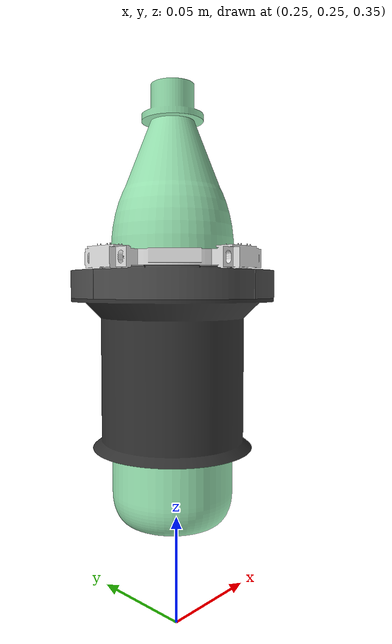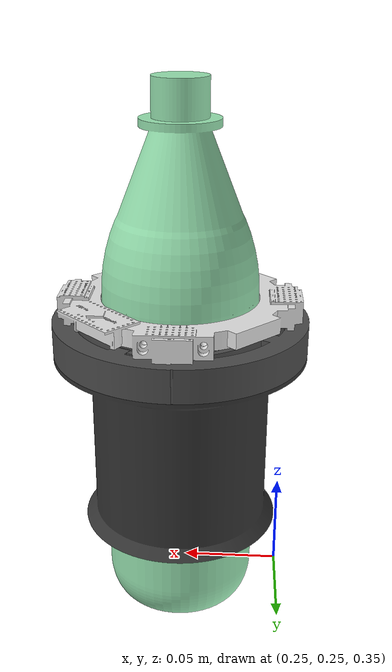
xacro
<?xml version="1.0" ?>
<robot
       xmlns:xacro="http://www.ros.org/wiki/xacro"
       name="bottle_ft_demo">

  <!-- basic Gazebo demo of the bottle_ft sensor.  -->

  <xacro:include filename="$(find tams_printed_ft)/urdf/ft_payload.xacro" />
  <xacro:include filename="$(find tams_printed_ft)/urdf/ft_sensor.xacro" />

  <xacro:include filename="$(find tams_printed_ft)/urdf/bottle_ft.xacro" />

  <link name="world" />

  <xacro:ft_control_plugin name="bottle_ft" />

  <xacro:ft_sensor_plugin
     name="bottle_ft"
     joint="sensor_joint"
     rate="200"
     topic="wrench" >
  </xacro:ft_sensor_plugin>

  <xacro:bottle_ft name="bottle_ft" />

  <joint name="world_bottle_ft_joint" type="fixed">
    <parent link="world" />
    <child link="bottle_ft" />
    <origin xyz="0.3 0.3 0.5" rpy="0 0 0" />
  </joint>

  <!-- single payload for testing -->

  <xacro:bottle_ft_bottle_500ml  name="bottle_500ml" />

  <joint name="world_bottle_ft_bottle_fixed_joint" type="fixed">
    <parent link="bottle_ft_upper_ring" />
    <child link="bottle_500ml" />
    <origin xyz="0 0 0" rpy="0 0 0" />
  </joint>

</robot>

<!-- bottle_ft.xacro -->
<robot
       xmlns:xacro="http://www.ros.org/wiki/xacro"
       name="bottle_ft">

<xacro:macro name="bottle_ft" params="name" >

  <link name="${name}">
    <!-- base ring height: outer 15mm, inner 18mm, fins~22mm, diameter 114mm -->
    <inertial>
      <origin xyz="0 0 ${0.016/2}" /> <!-- CoG is lower than total height -->
      <mass value="0.2" />
      <inertia  ixx="0.0001" ixy="0" ixz="0" iyy="0.0001" iyz="0" izz="0.00005" />
    </inertial>
    <visual>
      <origin xyz="0 0 0" />
      <material name="bottle_ft_gray" >
        <color rgba="0.3 0.3 0.3 1.0" />
      </material>
      <geometry>
        <mesh filename="package://tams_printed_ft/meshes/bottle-six-axis-ft-v2-base-ring-h15.dae" scale="0.001 0.001 0.001" />
      </geometry>
    </visual>
    <collision>
      <origin xyz="0 0 ${0.015/2}" /> <!-- outer height, 3mm gap to upper ring -->
      <geometry>
        <cylinder radius="${0.114/2}" length="0.015" />
      </geometry>
    </collision>
  </link>

  <gazebo reference="${name}">
    <material>Gazebo/Black</material>
    <turnGravityOff>false</turnGravityOff>
    <selfCollide>false</selfCollide>
    <!-- kp: stiffness kd: damping mu1, mu2: friction -->
    <mu1>100.0</mu1>
    <mu2>100.0</mu2>
    <kp>1000000.0</kp>
    <kd>1.0</kd>
  </gazebo>

  <link name="bottle_ft_upper_ring">
    <!-- effective height 8mm, outer diameter 108mm -->
    <inertial>
      <origin xyz="0 0 ${0.008/2}" />
      <mass value="0.10" />
      <inertia  ixx="0.00002" ixy="0" ixz="0" iyy="0.00002" iyz="0" izz="0.00001" />
    </inertial>
    <visual>
      <!-- note: this mesh is translated by (0,0,0.018) from the origin -->
      <origin xyz="0 0 -0.018" />
      <material name="silver" >
        <color rgba="0.9 0.9 0.9 1.0" />
      </material>
      <geometry>
        <mesh filename="package://tams_printed_ft/meshes/bottle-six-axis-ft-v2-upper-ring-sensor-modules-arduino.dae" scale="0.001 0.001 0.001" />
      </geometry>
    </visual>
    <collision>
      <origin xyz="0 0 ${0.008/2}" />
      <geometry>
        <cylinder radius="${0.108/2}" length="0.008" />
      </geometry>
    </collision>
  </link>

  <gazebo reference="bottle_ft_upper_ring">
      <material>Gazebo/White</material>
      <turnGravityOff>false</turnGravityOff>
      <selfCollide>false</selfCollide>
      <!-- kp: stiffness kd: damping mu1, mu2: friction -->
      <mu1>100.0</mu1>
      <mu2>100.0</mu2>
      <kp>1000000.0</kp>
      <kd>1.0</kd>
  </gazebo>

  <!-- type=floating, no axis required -->
  <joint name="${name}_sensor_joint" type="revolute">
    <parent link="${name}" />
    <child link="${name}_upper_ring" />
    <origin xyz="0 0 ${0.018}" rpy="0 0 0" />
    <axis xyz="1 0 0" rpy="0 0 0" />
    <dynamics damping="1.01" friction="0.05" />
    <limit lower="-0.02" upper="0.02" effort="100" velocity="1" />
    <safety_controller soft_lower_limit="-0.001" soft_upper_limit="0.001" k_position="1" k_velocity="1" />
  </joint>

  <transmission name="${name}_sensor_joint_transmission">
    <type>transmission_interface/SimpleTransmission</type>
    <joint name="${name}_sensor_joint">
      <hardwareInterface>hardware_interface/EffortJointInterface</hardwareInterface>
    </joint>
    <actuator name="${name}_sensor_joint_motor">
      <hardwareInterface>hardware_interface/EffortJointInterface</hardwareInterface>
      <mechanicalReduction>1</mechanicalReduction>
    </actuator>
  </transmission>

  <link name="bottle_ft_grasp_handle">
    <!-- main diameter of grasp handle: 70 + 2*2.5 = 75mm -->
    <inertial>
      <origin xyz="0 0 -0.035" />
      <mass value="0.15" />
      <inertia  ixx="0.00002" ixy="0" ixz="0" iyy="0.00002" iyz="0" izz="0.00001" />
    </inertial>
    <visual>
      <origin xyz="0 0 0" />
      <material name="bottle_ft_gray" >
        <color rgba="0.2 0.2 0.2 1.0" />
      </material>
      <geometry>
       <mesh filename="package://tams_printed_ft/meshes/bottle-six-axis-ft-v2-grasp-handle-70mm.dae" scale="0.001 0.001 0.001" />
      </geometry>
    </visual>
    <collision>
      <origin xyz="0 0 0" />
      <geometry>
        <mesh filename="package://tams_printed_ft/meshes/bottle-six-axis-ft-v2-grasp-handle-70mm.dae" scale="0.001 0.001 0.001" />
      </geometry>
    </collision>
  </link>

  <gazebo reference="bottle_ft_grasp_handle">
    <material>Gazebo/Black</material>
    <turnGravityOff>false</turnGravityOff>
    <selfCollide>false</selfCollide>
    <!-- kp: stiffness kd: damping mu1, mu2: friction -->
    <mu1>100.0</mu1>
    <mu2>100.0</mu2>
    <kp>1000000.0</kp>
    <kd>1.0</kd>
  </gazebo>

  <joint name="bottle_ft_grasp_handle_joint" type="fixed">
    <parent link="bottle_ft" />
    <child link="bottle_ft_grasp_handle" />
    <origin xyz="0 0 0" rpy="0 0 0" />
  </joint>

</xacro:macro>

<xacro:macro name="bottle_ft_bottle_500ml" params="name" >

  <link name="${name}">
    <inertial>
      <origin xyz="0 0 0" />
      <mass value="0.520" />
      <inertia  ixx="0.00002" ixy="0" ixz="0" iyy="0.00002" iyz="0" izz="0.00001" />
    </inertial>
    <visual>
      <origin xyz="0 0 0.1" />
      <material name="bottle_plastic" >
        <color rgba="0.6 0.9 0.7 1.0" />
      </material>
      <geometry>
       <mesh filename="package://tams_printed_ft/meshes/bottle_500ml.dae" scale="0.97 0.97 0.97" />
      </geometry>
    </visual>
    <collision>
      <origin xyz="0 0 0" />
      <geometry>
        <cylinder radius="${0.07/2}" length="0.2" />
      </geometry>
    </collision>
  </link>

  <gazebo reference="${name}">
    <material>Gazebo/White</material>
    <turnGravityOff>false</turnGravityOff>
    <selfCollide>false</selfCollide>
    <!-- kp: stiffness kd: damping mu1, mu2: friction -->
    <mu1>100.0</mu1>
    <mu2>100.0</mu2>
    <kp>1000000.0</kp>
    <kd>1.0</kd>
  </gazebo>

</xacro:macro>

</robot>
